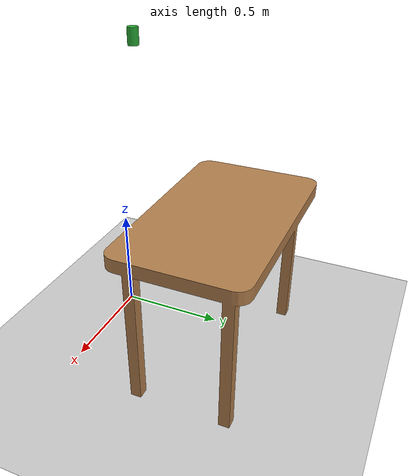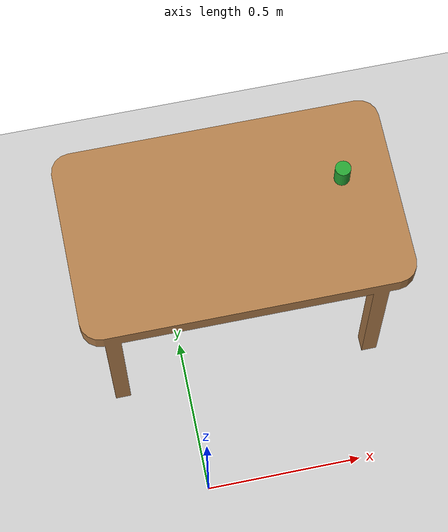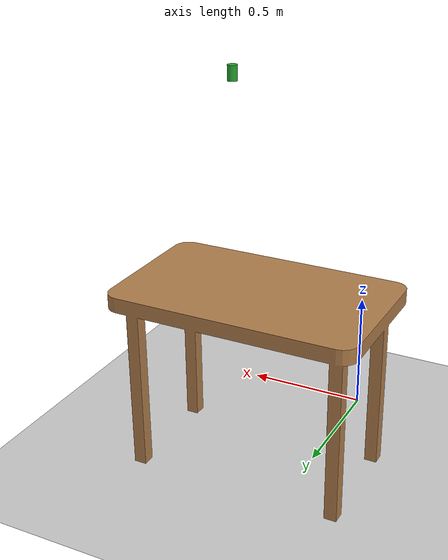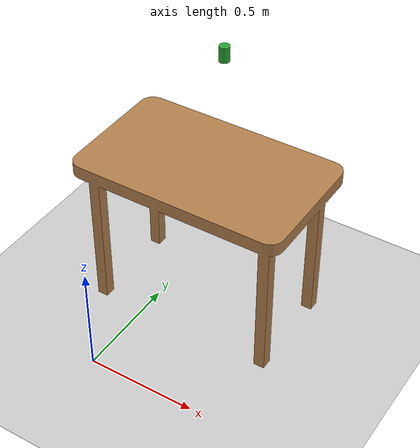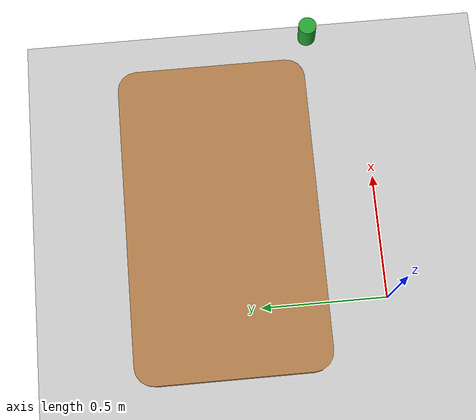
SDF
<sdf version="1.4">
 <world name="default">
  <include><uri>model://ground_plane</uri></include>
  <include><uri>model://sun</uri></include>
  <scene><ambient>0.0 0.0 0.0 1.0</ambient><shadows>0</shadows></scene>
  <model name="ground_plane">
   <static>1</static>
   <link name="link">
    <collision name="collision">
     <geometry><plane><normal>0 0 1</normal><size>100 100</size></plane></geometry>
     <surface><friction><ode><mu>100</mu><mu2>50</mu2></ode></friction></surface>
    </collision>
    <visual name="visual">
     <cast_shadows>0</cast_shadows>
     <geometry><plane><normal>0 0 1</normal><size>100 100</size></plane></geometry>
     <material>
      <script><uri>file://media/materials/scripts/gazebo.material</uri><name>Gazebo/Grey</name></script>
     </material>
    </visual>
    <velocity_decay><linear>0</linear><angular>0</angular></velocity_decay>
   </link>
  </model>
  <light name="sun" type="directional">
   <pose>0 0 10 0 -0 0</pose>
   <diffuse>0.8 0.8 0.8 1</diffuse>
   <specular>0.2 0.2 0.2 1</specular>
   <attenuation>
    <range>1000</range>
    <constant>0.9</constant>
    <linear>0.01</linear>
    <quadratic>0.001</quadratic>
   </attenuation>
   <direction>-0.5 0.1 -0.9</direction>
  </light>
  <scene><ambient>0 0 0 1</ambient><shadows>0</shadows><background>0.7 0.7 0.7 1</background></scene>
  <physics type="ode">
   <max_step_size>0.001</max_step_size>
   <real_time_factor>1</real_time_factor>
   <real_time_update_rate>1000</real_time_update_rate>
   <gravity>0 0 -9.81</gravity>
  </physics>
  <spherical_coordinates>
   <surface_model>EARTH_WGS84</surface_model>
   <latitude_deg>0</latitude_deg>
   <longitude_deg>0</longitude_deg>
   <elevation>0</elevation>
   <heading_deg>0</heading_deg>
  </spherical_coordinates>
  <model name="table_obj">
   <link name="Table">
    <inertial>
     <mass>26.9903</mass>
     <inertia>
      <ixx>1.58946</ixx>
      <ixy>-0.00120742</ixy>
      <ixz>-0.000368263</ixz>
      <iyy>-0.0025875</iyy>
      <iyz>-3.49211</iyz>
      <izz>0.0076445</izz>
     </inertia>
    </inertial>
    <collision name="Table_collision">
     <geometry>
      <mesh>
       <scale>1 1 1</scale>
       <uri>/home/rishabh1b/ROS808X/catkin_ws2/src/robotarm_description/meshes/Table.STL</uri>
      </mesh>
     </geometry>
     <surface><friction><ode><mu>100</mu><mu2>50</mu2></ode></friction></surface>
    </collision>
    <visual name="Table_visual">
     <geometry>
      <mesh>
       <scale>1 1 1</scale>
       <uri>/home/rishabh1b/ROS808X/catkin_ws2/src/robotarm_description/meshes/Table.STL</uri>
      </mesh>
     </geometry>
     <material><script><name>Gazebo/WoodPallet</name><uri>__default__</uri></script></material>
    </visual>
    <velocity_decay><linear>0</linear><angular>0</angular></velocity_decay>
    <velocity_decay><linear>0</linear><angular>0</angular></velocity_decay>
   </link>
   <pose>0 0.6 0.7 0 0 0</pose>
   <static>0</static>
  </model>
  <model name="object_on_table">
   <link name="obj">
    <inertial>
     <mass>0.026</mass>
     <inertia>
      <ixx>1.58946</ixx>
      <ixy>-0.00120742</ixy>
      <ixz>-0.000368263</ixz>
      <iyy>-0.0025875</iyy>
      <iyz>-3.49211</iyz>
      <izz>0.0076445</izz>
     </inertia>
    </inertial>
    <collision name="Table_collision">
     <geometry><cylinder><radius>0.02</radius><length>0.06</length></cylinder></geometry>
     <surface><friction><ode><mu>100</mu><mu2>50</mu2></ode></friction></surface>
    </collision>
    <visual name="Table_visual_OBJ">
     <geometry><cylinder><radius>0.02</radius><length>0.06</length></cylinder></geometry>
     <material><script><name>Gazebo/Green</name><uri>__default__</uri></script></material>
    </visual>
    <velocity_decay><linear>0</linear><angular>0</angular></velocity_decay>
    <velocity_decay><linear>0</linear><angular>0</angular></velocity_decay>
   </link>
   <pose>0.43 0.35 1.5 0 0 0</pose>
   <static>0</static>
  </model>
 </world>
</sdf>
